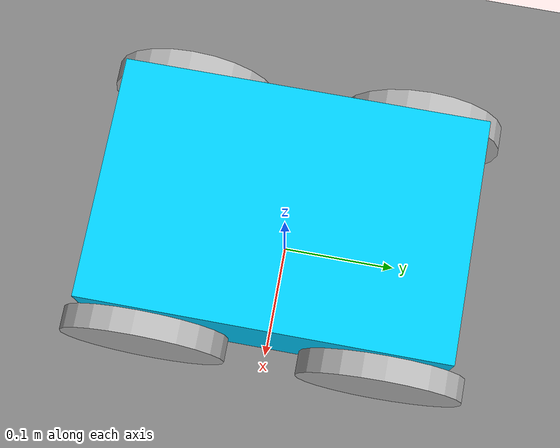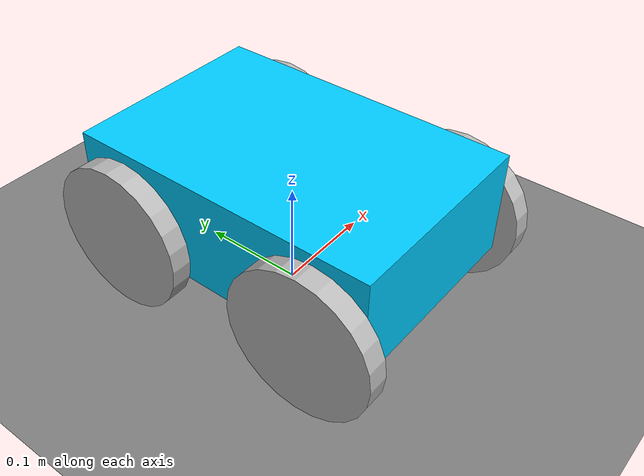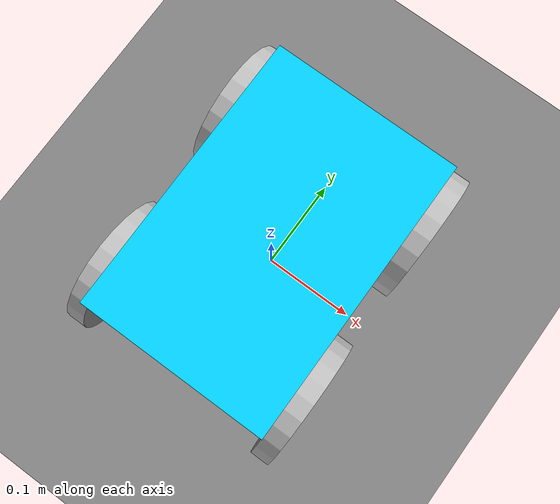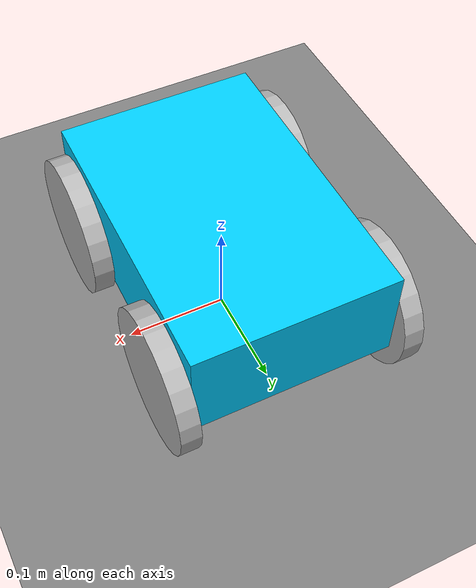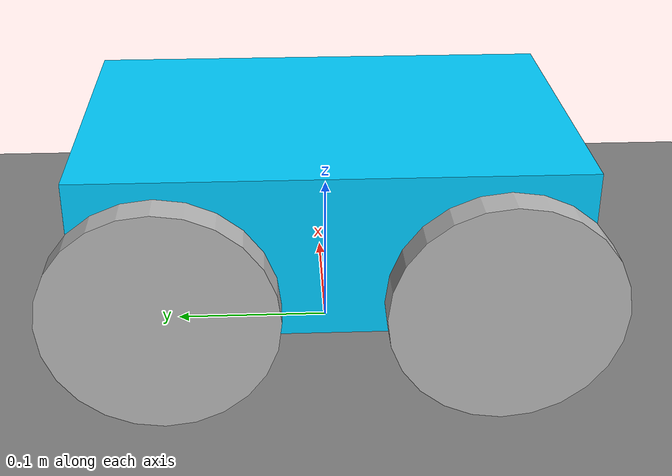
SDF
<?xml version="1.0" ?>
<sdf version="1.7">
	<world name="demo_world">
		<!-- A flat ground -->
		<model name="flat_ground">
			<static>true</static>
			<link name="ground_link">
				<collision name="ground_collision">
					<geometry>
						<plane>
							<normal>0 0 1</normal>
							<size>10 10</size>
						</plane>
					</geometry>
				</collision>
				<visual name="ground_visual">
					<geometry>
						<plane>
							<normal>0 0 1</normal>
							<size>10 10</size>
						</plane>
					</geometry>
					<material>
						<ambient>0.3 0.3 0.3 1</ambient>
						<diffuse>0.5 0.5 0.5 1</diffuse>
					</material>
				</visual>
			</link>
		</model>
		<model name="simple_bot">
			<!-- Chassis -->
			<link name="chassis">
				<pose>0 0 0.1 0 0 0</pose>
				<inertial>
					<mass>1.0</mass>
					<inertia>
						<ixx>0.1</ixx><iyy>0.1</iyy><izz>0.1</izz>
						<ixy>0.0</ixy><ixz>0.0</ixz><iyz>0.0</iyz>
					</inertia>
				</inertial>
				<collision name="chassis_collision">
					<geometry>
						<box>
							<size>0.2 0.3 0.1</size>
						</box>
					</geometry>
				</collision>
				<visual name="chassis_visual">
					<geometry>
						<box>
							<size>0.2 0.3 0.1</size>
						</box>
					</geometry>
					<material>
						<ambient>0 0 1 1</ambient>
						<diffuse>0 0.8 1</diffuse>
						<specular>0.5 0.5 0.5 1</specular>
						<emissive>0 0 1</emissive>
					</material>
				</visual>
			</link>

			<!-- Left Front Wheel -->
			<link name="left_front_wheel">
				<pose>-0.11 0.1 0.07 0 1.57 0</pose>
				<inertial>
					<mass>0.2</mass>
					<inertia>
						<ixx>0.01</ixx><iyy>0.01</iyy><izz>0.01</izz>
						<ixy>0.0</ixy><ixz>0.0</ixz><iyz>0.0</iyz>
					</inertia>
				</inertial>
				<collision name="left_front_wheel_collision">
					<geometry>
						<cylinder>
							<radius>0.07</radius>
							<length>0.02</length>
						</cylinder>
					</geometry>
				</collision>
				<visual name="left_front_wheel_visual">
					<geometry>
						<cylinder>
							<radius>0.07</radius>
							<length>0.02</length>
						</cylinder>
					</geometry>
				</visual>
			</link>

			<!-- Left Back Wheel -->
			<link name="left_back_wheel">
				<pose>0.11 0.1 0.07 0 1.57 0</pose>
				<inertial>
					<mass>0.2</mass>
					<inertia>
						<ixx>0.01</ixx><iyy>0.01</iyy><izz>0.01</izz>
						<ixy>0.0</ixy><ixz>0.0</ixz><iyz>0.0</iyz>
					</inertia>
				</inertial>
				<collision name="Left_back_wheel_collision">
					<geometry>
						<cylinder>
							<radius>0.07</radius>
							<length>0.02</length>
						</cylinder>
					</geometry>
				</collision>
				<visual name="Left_back_wheel_visual">
					<geometry>
						<cylinder>
							<radius>0.07</radius>
							<length>0.02</length>
						</cylinder>
					</geometry>
				</visual>
			</link>

			<!-- Right Front wheel -->
			<link name="right_front_wheel">
				<pose>-0.11 -0.1 0.07 0 1.57 0</pose>
				<inertial>
					<mass>0.2</mass>
					<inertia>
						<ixx>0.01</ixx><iyy>0.01</iyy><izz>0.01</izz>
						<ixy>0.0</ixy><ixz>0.0</ixz><iyz>0.0</iyz>
					</inertia>
				</inertial>
				<collision name="right_front_wheel_collision">
					<geometry>
						<cylinder>
							<radius>0.07</radius>
							<length>0.02</length>
						</cylinder>
					</geometry>
				</collision>
				<visual name="right_front_wheel_visual">
					<geometry>
						<cylinder>
							<radius>0.07</radius>
							<length>0.02</length>
						</cylinder>
					</geometry>
				</visual>
			</link>

			<!-- Right Back Wheel -->
			<link name="right_back_wheel">
				<pose>0.11 -0.1 0.07 0 1.57 0 </pose>
				<inertial>
					<mass>0.2</mass>
					<inertia>
						<ixx>0.01</ixx><iyy>0.01</iyy><izz>0.01</izz>
						<ixy>0.0</ixy><ixz>0.0</ixz><iyz>0.0</iyz>
					</inertia>
				</inertial>
				<collision name="right_back_wheel_collision">
					<geometry>
						<cylinder>
							<radius>0.07</radius>
							<length>0.02</length>
						</cylinder>
					</geometry>
				</collision>
				<visual name="right_back_wheel_visual">
					<geometry>
						<cylinder>
							<radius>0.07</radius>
							<length>0.02</length>
						</cylinder>
					</geometry>
				</visual>
			</link>

			<!-- Joints -->
			<joint name="left_front_wheel_joint" type="revolute">
				<parent>chassis</parent>
				<child>left_front_wheel</child>
				<axis>
					<xyz>0 1 0</xyz> <!-- rotate around Y -->
					<limit>
						<lower>-1e16</lower>
						<upper>1e16</upper>
					</limit>
				</axis>
			</joint>

			<joint name="left_back_wheel_joint" type="revolute">
				<parent>chassis</parent>
				<child>left_back_wheel</child>
				<axis>
					<xyz>0 1 0</xyz> <!-- rotate around Y -->
					<limit>
						<lower>-1e16</lower>
						<upper>1e16</upper>
					</limit>
				</axis>
			</joint>

			<joint name="right_front_wheel_joint" type="revolute">
				<parent>chassis</parent>
				<child>right_front_wheel</child>
				<axis>
					<xyz>0 1 0</xyz> <!-- rotate around Y -->
					<limit>
						<lower>-1e16</lower>
						<upper>1e16</upper>
					</limit>
				</axis>
			</joint>

			<joint name="right_back_wheel_joint" type="revolute">
				<parent>chassis</parent>
				<child>right_back_wheel</child>
				<axis>
					<xyz>0 1 0</xyz> <!-- rotate around Y -->
					<limit>
						<lower>-1e16</lower>
						<upper>1e16</upper>
					</limit>
				</axis>
			</joint>

			<!-- Differential Drive Plugin -->
			<plugin name="gz::sim::systems::DiffDrive" filename="libgz-sim-diff-drive-system.so">
				<left_joint>left_back_wheel_joint</left_joint>
				<right_joint>right_back_wheel_joint</right_joint> 									<wheel_separation>0.2</wheel_separation>
				<wheel_radius>0.07</wheel_radius>
				<odom_publish_frequency>50</odom_publish_frequency>
					<topic>cmd_vel</topic>
			</plugin>
		</model>
	</world>
</sdf>
